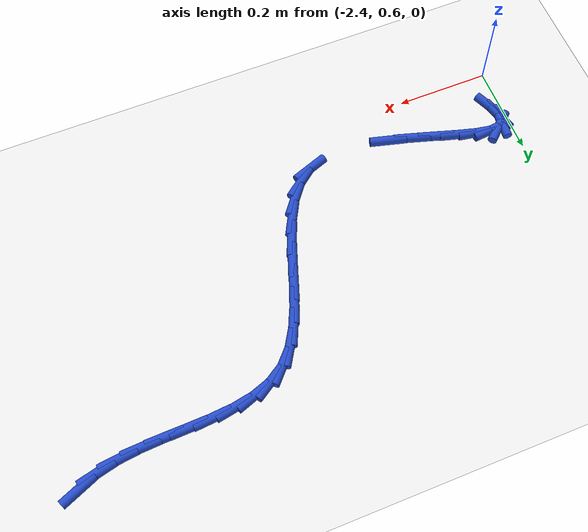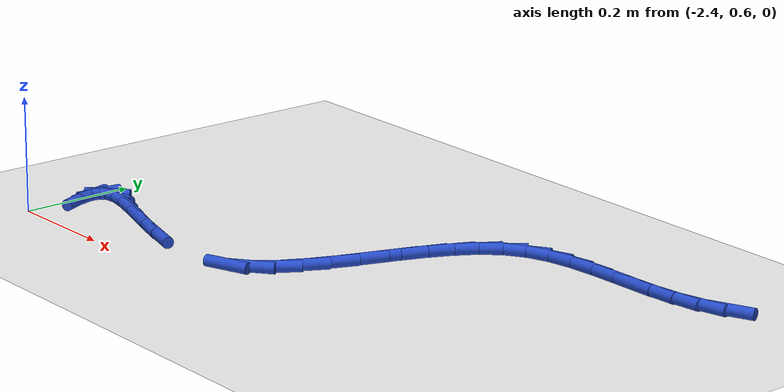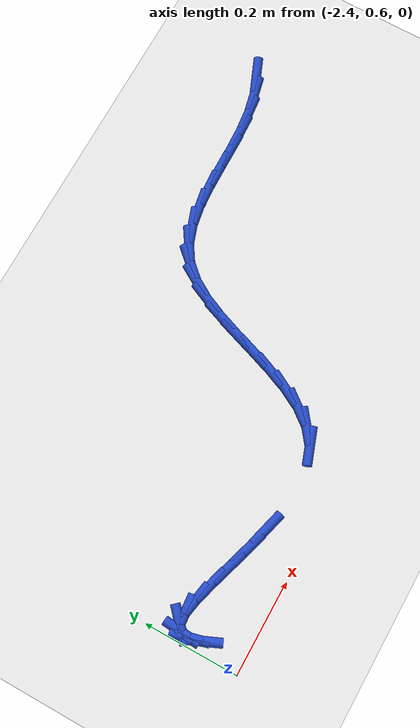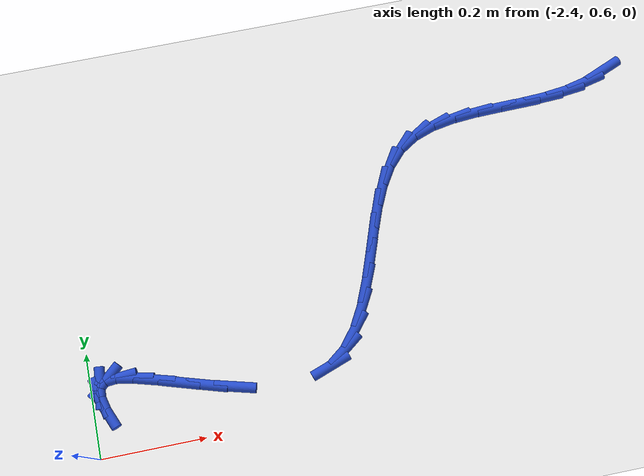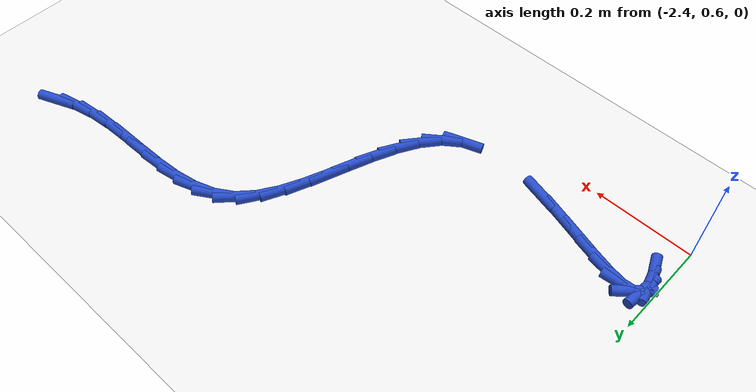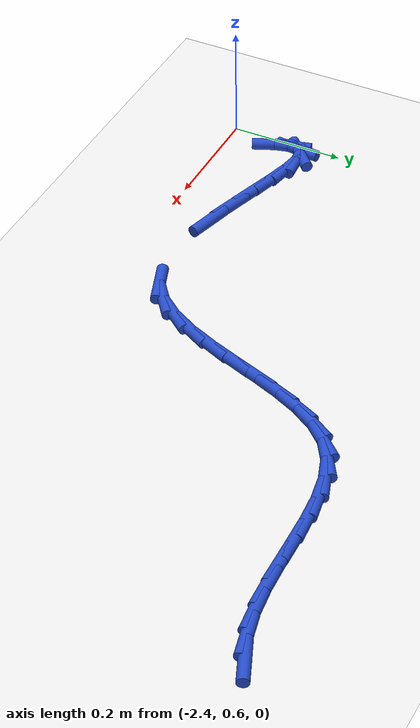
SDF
<sdf version="1.6">
 <world name="default">
  <model name="ground_plane">
   <static>1</static>
   <link name="link">
    <collision name="collision">
     <geometry><plane><normal>0 0 1</normal><size>100 100</size></plane></geometry>
     <surface><friction><ode><mu>100</mu><mu2>50</mu2></ode></friction></surface>
    </collision>
    <visual name="visual">
     <cast_shadows>0</cast_shadows>
     <geometry><plane><normal>0 0 1</normal><size>100 100</size></plane></geometry>
     <material>
      <script><uri>file://media/materials/scripts/gazebo.material</uri><name>Gazebo/WhiteGlow</name></script>
     </material>
    </visual>
   </link>
  </model>
  <model name="line">
   <link name="link_46">
    <pose>-1.29069983564481 1.164180584095607 0.01 0 1.57 0.39514696649424697</pose>
    <collision name="collision">
     <geometry><cylinder><radius>0.01</radius><length>0.08</length></cylinder></geometry>
    </collision>
    <visual name="visual">
     <material>
      <script><name>Gazebo/Blue</name><uri>file://media/materials/scripts/gazebo.material</uri></script>
     </material>
     <geometry><cylinder><radius>0.01</radius><length>0.08</length></cylinder></geometry>
    </visual>
   </link>
   <link name="link_47">
    <pose>-1.3315687215515852 1.1471348112035014 0.01 0 1.57 0.22806305997216328</pose>
    <collision name="collision">
     <geometry><cylinder><radius>0.01</radius><length>0.08</length></cylinder></geometry>
    </collision>
    <visual name="visual">
     <material>
      <script><name>Gazebo/Blue</name><uri>file://media/materials/scripts/gazebo.material</uri></script>
     </material>
     <geometry><cylinder><radius>0.01</radius><length>0.08</length></cylinder></geometry>
    </visual>
   </link>
   <link name="link_48">
    <pose>-1.3759237157967537 1.1368399657262411 0.01 0 1.57 0.11274368224410479</pose>
    <collision name="collision">
     <geometry><cylinder><radius>0.01</radius><length>0.08</length></cylinder></geometry>
    </collision>
    <visual name="visual">
     <material>
      <script><name>Gazebo/Blue</name><uri>file://media/materials/scripts/gazebo.material</uri></script>
     </material>
     <geometry><cylinder><radius>0.01</radius><length>0.08</length></cylinder></geometry>
    </visual>
   </link>
   <link name="link_49">
    <pose>-1.422721116077779 1.1315413851218772 0.01 0 1.57 0.044212919236985525</pose>
    <collision name="collision">
     <geometry><cylinder><radius>0.01</radius><length>0.08</length></cylinder></geometry>
    </collision>
    <visual name="visual">
     <material>
      <script><name>Gazebo/Blue</name><uri>file://media/materials/scripts/gazebo.material</uri></script>
     </material>
     <geometry><cylinder><radius>0.01</radius><length>0.08</length></cylinder></geometry>
    </visual>
   </link>
   <link name="link_50">
    <pose>-1.470875285632513 1.1294109603593367 0.01 0 1.57 0.01632014143880842</pose>
    <collision name="collision">
     <geometry><cylinder><radius>0.01</radius><length>0.08</length></cylinder></geometry>
    </collision>
    <visual name="visual">
     <material>
      <script><name>Gazebo/Blue</name><uri>file://media/materials/scripts/gazebo.material</uri></script>
     </material>
     <geometry><cylinder><radius>0.01</radius><length>0.08</length></cylinder></geometry>
    </visual>
   </link>
   <link name="link_51">
    <pose>-1.5193005876988095 1.1286205824075486 0.01 0 1.57 0.02684544476173339</pose>
    <collision name="collision">
     <geometry><cylinder><radius>0.01</radius><length>0.08</length></cylinder></geometry>
    </collision>
    <visual name="visual">
     <material>
      <script><name>Gazebo/Blue</name><uri>file://media/materials/scripts/gazebo.material</uri></script>
     </material>
     <geometry><cylinder><radius>0.01</radius><length>0.08</length></cylinder></geometry>
    </visual>
   </link>
   <link name="link_52">
    <pose>-1.5669113855145214 1.1273421422354404 0.01 0 1.57 0.07847686650420913</pose>
    <collision name="collision">
     <geometry><cylinder><radius>0.01</radius><length>0.08</length></cylinder></geometry>
    </collision>
    <visual name="visual">
     <material>
      <script><name>Gazebo/Blue</name><uri>file://media/materials/scripts/gazebo.material</uri></script>
     </material>
     <geometry><cylinder><radius>0.01</radius><length>0.08</length></cylinder></geometry>
    </visual>
   </link>
   <link name="link_53">
    <pose>-1.612622042317501 1.1237475308119411 0.01 0 1.57 0.17919030424201426</pose>
    <collision name="collision">
     <geometry><cylinder><radius>0.01</radius><length>0.08</length></cylinder></geometry>
    </collision>
    <visual name="visual">
     <material>
      <script><name>Gazebo/Blue</name><uri>file://media/materials/scripts/gazebo.material</uri></script>
     </material>
     <geometry><cylinder><radius>0.01</radius><length>0.08</length></cylinder></geometry>
    </visual>
   </link>
   <link name="link_54">
    <pose>-1.6553469213456027 1.1160086391059783 0.01 0 1.57 0.3408763668120816</pose>
    <collision name="collision">
     <geometry><cylinder><radius>0.01</radius><length>0.08</length></cylinder></geometry>
    </collision>
    <visual name="visual">
     <material>
      <script><name>Gazebo/Blue</name><uri>file://media/materials/scripts/gazebo.material</uri></script>
     </material>
     <geometry><cylinder><radius>0.01</radius><length>0.08</length></cylinder></geometry>
    </visual>
   </link>
   <link name="link_55">
    <pose>-1.6940003858366783 1.1022973580864803 0.01 0 1.57 0.5708767688914463</pose>
    <collision name="collision">
     <geometry><cylinder><radius>0.01</radius><length>0.08</length></cylinder></geometry>
    </collision>
    <visual name="visual">
     <material>
      <script><name>Gazebo/Blue</name><uri>file://media/materials/scripts/gazebo.material</uri></script>
     </material>
     <geometry><cylinder><radius>0.01</radius><length>0.08</length></cylinder></geometry>
    </visual>
   </link>
   <link name="link_56">
    <pose>-1.7274968765824859 1.0807857030864998 0.01 0 1.57 0.8310854247131998</pose>
    <collision name="collision">
     <geometry><cylinder><radius>0.01</radius><length>0.08</length></cylinder></geometry>
    </collision>
    <visual name="visual">
     <material>
      <script><name>Gazebo/Blue</name><uri>file://media/materials/scripts/gazebo.material</uri></script>
     </material>
     <geometry><cylinder><radius>0.01</radius><length>0.08</length></cylinder></geometry>
    </visual>
   </link>
   <link name="link_57">
    <pose>-1.755223017300985 1.0504028739626246 0.01 0 1.57 1.025249480476236</pose>
    <collision name="collision">
     <geometry><cylinder><radius>0.01</radius><length>0.08</length></cylinder></geometry>
    </collision>
    <visual name="visual">
     <material>
      <script><name>Gazebo/Blue</name><uri>file://media/materials/scripts/gazebo.material</uri></script>
     </material>
     <geometry><cylinder><radius>0.01</radius><length>0.08</length></cylinder></geometry>
    </visual>
   </link>
   <link name="link_58">
    <pose>-1.7781538494545799 1.0126252302975927 0.01 0 1.57 1.1475236895543983</pose>
    <collision name="collision">
     <geometry><cylinder><radius>0.01</radius><length>0.08</length></cylinder></geometry>
    </collision>
    <visual name="visual">
     <material>
      <script><name>Gazebo/Blue</name><uri>file://media/materials/scripts/gazebo.material</uri></script>
     </material>
     <geometry><cylinder><radius>0.01</radius><length>0.08</length></cylinder></geometry>
    </visual>
   </link>
   <link name="link_59">
    <pose>-1.7975980639612406 0.9694641662762494 0.01 0 1.57 1.2154896711996002</pose>
    <collision name="collision">
     <geometry><cylinder><radius>0.01</radius><length>0.08</length></cylinder></geometry>
    </collision>
    <visual name="visual">
     <material>
      <script><name>Gazebo/Blue</name><uri>file://media/materials/scripts/gazebo.material</uri></script>
     </material>
     <geometry><cylinder><radius>0.01</radius><length>0.08</length></cylinder></geometry>
    </visual>
   </link>
   <link name="link_60">
    <pose>-1.8148643517389391 0.9229310760834392 0.01 0 1.57 1.2409409513675356</pose>
    <collision name="collision">
     <geometry><cylinder><radius>0.01</radius><length>0.08</length></cylinder></geometry>
    </collision>
    <visual name="visual">
     <material>
      <script><name>Gazebo/Blue</name><uri>file://media/materials/scripts/gazebo.material</uri></script>
     </material>
     <geometry><cylinder><radius>0.01</radius><length>0.08</length></cylinder></geometry>
    </visual>
   </link>
   <link name="link_61">
    <pose>-1.8312614037056454 0.8750373539040065 0.01 0 1.57 1.228447965268901</pose>
    <collision name="collision">
     <geometry><cylinder><radius>0.01</radius><length>0.08</length></cylinder></geometry>
    </collision>
    <visual name="visual">
     <material>
      <script><name>Gazebo/Blue</name><uri>file://media/materials/scripts/gazebo.material</uri></script>
     </material>
     <geometry><cylinder><radius>0.01</radius><length>0.08</length></cylinder></geometry>
    </visual>
   </link>
   <link name="link_62">
    <pose>-1.8480979107793316 0.8277943939227962 0.01 0 1.57 1.1758271206886997</pose>
    <collision name="collision">
     <geometry><cylinder><radius>0.01</radius><length>0.08</length></cylinder></geometry>
    </collision>
    <visual name="visual">
     <material>
      <script><name>Gazebo/Blue</name><uri>file://media/materials/scripts/gazebo.material</uri></script>
     </material>
     <geometry><cylinder><radius>0.01</radius><length>0.08</length></cylinder></geometry>
    </visual>
   </link>
   <link name="link_63">
    <pose>-1.8666825638779678 0.783213590324652 0.01 0 1.57 1.0738881686351627</pose>
    <collision name="collision">
     <geometry><cylinder><radius>0.01</radius><length>0.08</length></cylinder></geometry>
    </collision>
    <visual name="visual">
     <material>
      <script><name>Gazebo/Blue</name><uri>file://media/materials/scripts/gazebo.material</uri></script>
     </material>
     <geometry><cylinder><radius>0.01</radius><length>0.08</length></cylinder></geometry>
    </visual>
   </link>
   <link name="link_64">
    <pose>-1.888324053919527 0.7433063372944199 0.01 0 1.57 0.9066204304446323</pose>
    <collision name="collision">
     <geometry><cylinder><radius>0.01</radius><length>0.08</length></cylinder></geometry>
    </collision>
    <visual name="visual">
     <material>
      <script><name>Gazebo/Blue</name><uri>file://media/materials/scripts/gazebo.material</uri></script>
     </material>
     <geometry><cylinder><radius>0.01</radius><length>0.08</length></cylinder></geometry>
    </visual>
   </link>
   <link name="link_65">
    <pose>-1.9143310718219775 0.7100840290169437 0.01 0 1.57 0.6587776222680009</pose>
    <collision name="collision">
     <geometry><cylinder><radius>0.01</radius><length>0.08</length></cylinder></geometry>
    </collision>
    <visual name="visual">
     <material>
      <script><name>Gazebo/Blue</name><uri>file://media/materials/scripts/gazebo.material</uri></script>
     </material>
     <geometry><cylinder><radius>0.01</radius><length>0.08</length></cylinder></geometry>
    </visual>
   </link>
   <link name="link_66">
    <pose>-1.9460123085032934 0.685558059677068 0.01 0 1.57 0.3470764764544963</pose>
    <collision name="collision">
     <geometry><cylinder><radius>0.01</radius><length>0.08</length></cylinder></geometry>
    </collision>
    <visual name="visual">
     <material>
      <script><name>Gazebo/Blue</name><uri>file://media/materials/scripts/gazebo.material</uri></script>
     </material>
     <geometry><cylinder><radius>0.01</radius><length>0.08</length></cylinder></geometry>
    </visual>
   </link>
   <link name="link_70">
    <pose>-2.1300597256004714 0.682449025567996 0.01 0 1.57 -0.26076573803681447</pose>
    <collision name="collision">
     <geometry><cylinder><radius>0.01</radius><length>0.08</length></cylinder></geometry>
    </collision>
    <visual name="visual">
     <material>
      <script><name>Gazebo/Blue</name><uri>file://media/materials/scripts/gazebo.material</uri></script>
     </material>
     <geometry><cylinder><radius>0.01</radius><length>0.08</length></cylinder></geometry>
    </visual>
   </link>
   <link name="link_71">
    <pose>-2.181629617566272 0.6962100199247556 0.01 0 1.57 -0.29521249437195773</pose>
    <collision name="collision">
     <geometry><cylinder><radius>0.01</radius><length>0.08</length></cylinder></geometry>
    </collision>
    <visual name="visual">
     <material>
      <script><name>Gazebo/Blue</name><uri>file://media/materials/scripts/gazebo.material</uri></script>
     </material>
     <geometry><cylinder><radius>0.01</radius><length>0.08</length></cylinder></geometry>
    </visual>
   </link>
   <link name="link_72">
    <pose>-2.2312838437044666 0.7113097881542555 0.01 0 1.57 -0.30141856154838353</pose>
    <collision name="collision">
     <geometry><cylinder><radius>0.01</radius><length>0.08</length></cylinder></geometry>
    </collision>
    <visual name="visual">
     <material>
      <script><name>Gazebo/Blue</name><uri>file://media/materials/scripts/gazebo.material</uri></script>
     </material>
     <geometry><cylinder><radius>0.01</radius><length>0.08</length></cylinder></geometry>
    </visual>
   </link>
   <link name="link_73">
    <pose>-2.2769506941284967 0.7255072116886339 0.01 0 1.57 -0.272160660149277</pose>
    <collision name="collision">
     <geometry><cylinder><radius>0.01</radius><length>0.08</length></cylinder></geometry>
    </collision>
    <visual name="visual">
     <material>
      <script><name>Gazebo/Blue</name><uri>file://media/materials/scripts/gazebo.material</uri></script>
     </material>
     <geometry><cylinder><radius>0.01</radius><length>0.08</length></cylinder></geometry>
    </visual>
   </link>
   <link name="link_74">
    <pose>-2.3165584589518016 0.736561171960029 0.01 0 1.57 -0.17820137625461402</pose>
    <collision name="collision">
     <geometry><cylinder><radius>0.01</radius><length>0.08</length></cylinder></geometry>
    </collision>
    <visual name="visual">
     <material>
      <script><name>Gazebo/Blue</name><uri>file://media/materials/scripts/gazebo.material</uri></script>
     </material>
     <geometry><cylinder><radius>0.01</radius><length>0.08</length></cylinder></geometry>
    </visual>
   </link>
   <link name="link_75">
    <pose>-2.3480354282878197 0.7422305504005786 0.01 0 1.57 0.08758824292946076</pose>
    <collision name="collision">
     <geometry><cylinder><radius>0.01</radius><length>0.08</length></cylinder></geometry>
    </collision>
    <visual name="visual">
     <material>
      <script><name>Gazebo/Blue</name><uri>file://media/materials/scripts/gazebo.material</uri></script>
     </material>
     <geometry><cylinder><radius>0.01</radius><length>0.08</length></cylinder></geometry>
    </visual>
   </link>
   <link name="link_76">
    <pose>-2.3694001777182203 0.7403544494537513 0.01 0 1.57 0.7454245299610825</pose>
    <collision name="collision">
     <geometry><cylinder><radius>0.01</radius><length>0.08</length></cylinder></geometry>
    </collision>
    <visual name="visual">
     <material>
      <script><name>Gazebo/Blue</name><uri>file://media/materials/scripts/gazebo.material</uri></script>
     </material>
     <geometry><cylinder><radius>0.01</radius><length>0.08</length></cylinder></geometry>
    </visual>
   </link>
   <link name="link_77">
    <pose>-2.380340761166525 0.7302553469456153 0.01 0 1.57 1.4764117641267474</pose>
    <collision name="collision">
     <geometry><cylinder><radius>0.01</radius><length>0.08</length></cylinder></geometry>
    </collision>
    <visual name="visual">
     <material>
      <script><name>Gazebo/Blue</name><uri>file://media/materials/scripts/gazebo.material</uri></script>
     </material>
     <geometry><cylinder><radius>0.01</radius><length>0.08</length></cylinder></geometry>
    </visual>
   </link>
   <link name="link_78">
    <pose>-2.3820156918439466 0.7125622624247613 0.01 0 1.57 -1.3170961937551722</pose>
    <collision name="collision">
     <geometry><cylinder><radius>0.01</radius><length>0.08</length></cylinder></geometry>
    </collision>
    <visual name="visual">
     <material>
      <script><name>Gazebo/Blue</name><uri>file://media/materials/scripts/gazebo.material</uri></script>
     </material>
     <geometry><cylinder><radius>0.01</radius><length>0.08</length></cylinder></geometry>
    </visual>
   </link>
   <link name="link_79">
    <pose>-2.3756337634605607 0.6879488909844502 0.01 0 1.57 -1.165786960549722</pose>
    <collision name="collision">
     <geometry><cylinder><radius>0.01</radius><length>0.08</length></cylinder></geometry>
    </collision>
    <visual name="visual">
     <material>
      <script><name>Gazebo/Blue</name><uri>file://media/materials/scripts/gazebo.material</uri></script>
     </material>
     <geometry><cylinder><radius>0.01</radius><length>0.08</length></cylinder></geometry>
    </visual>
   </link>
  </model>
 </world>
</sdf>
